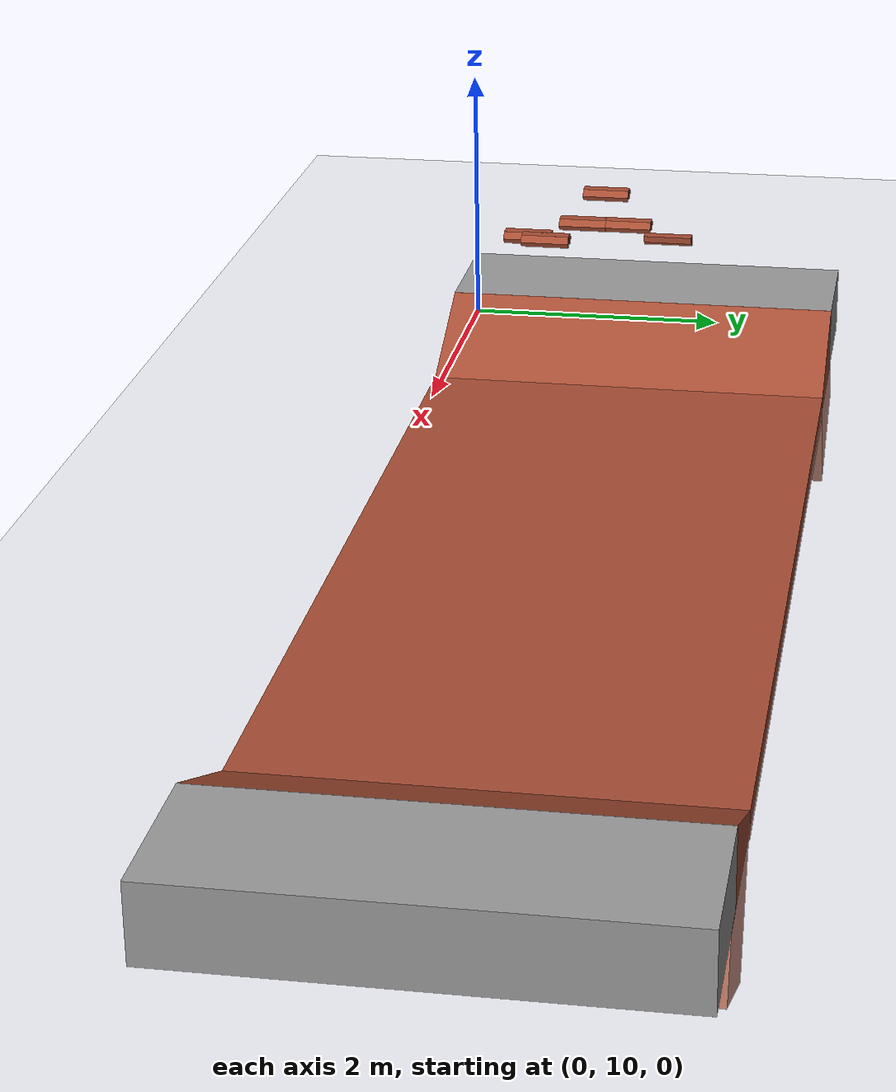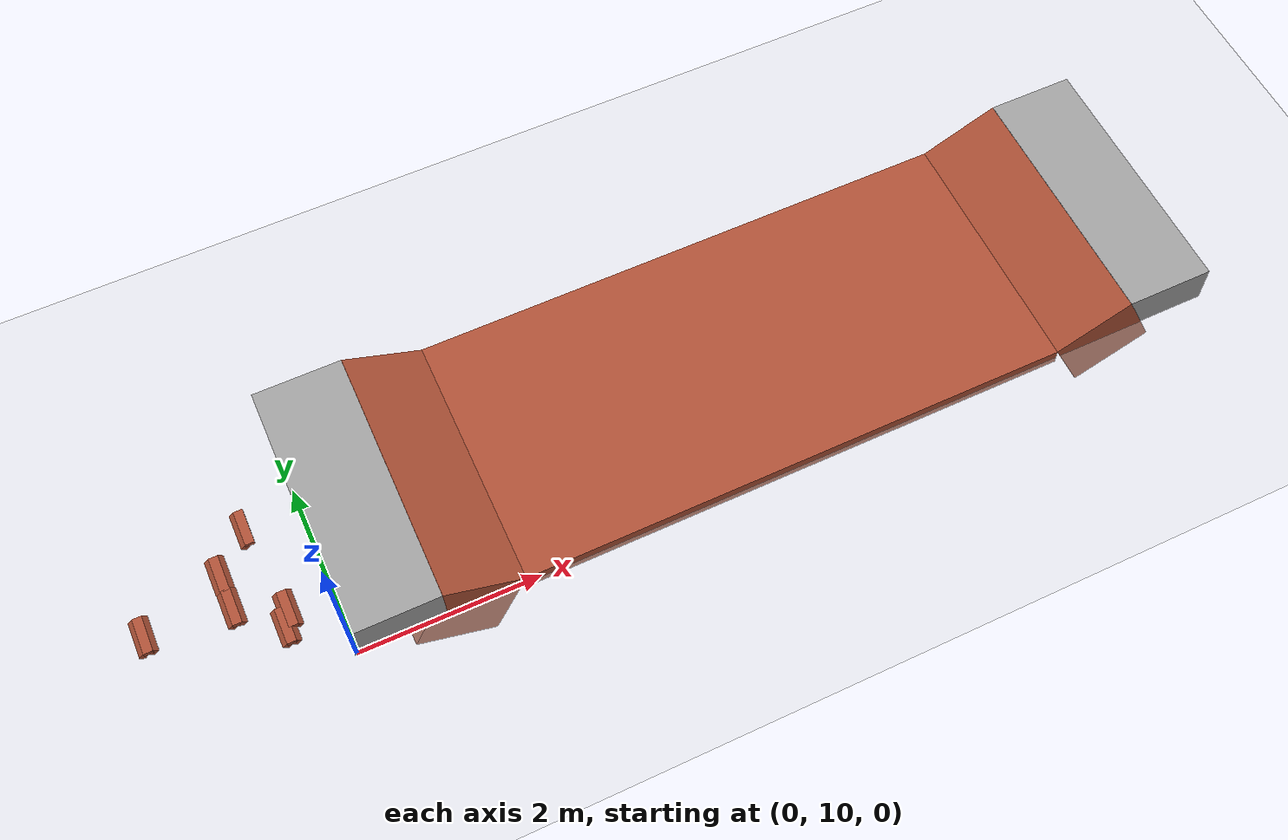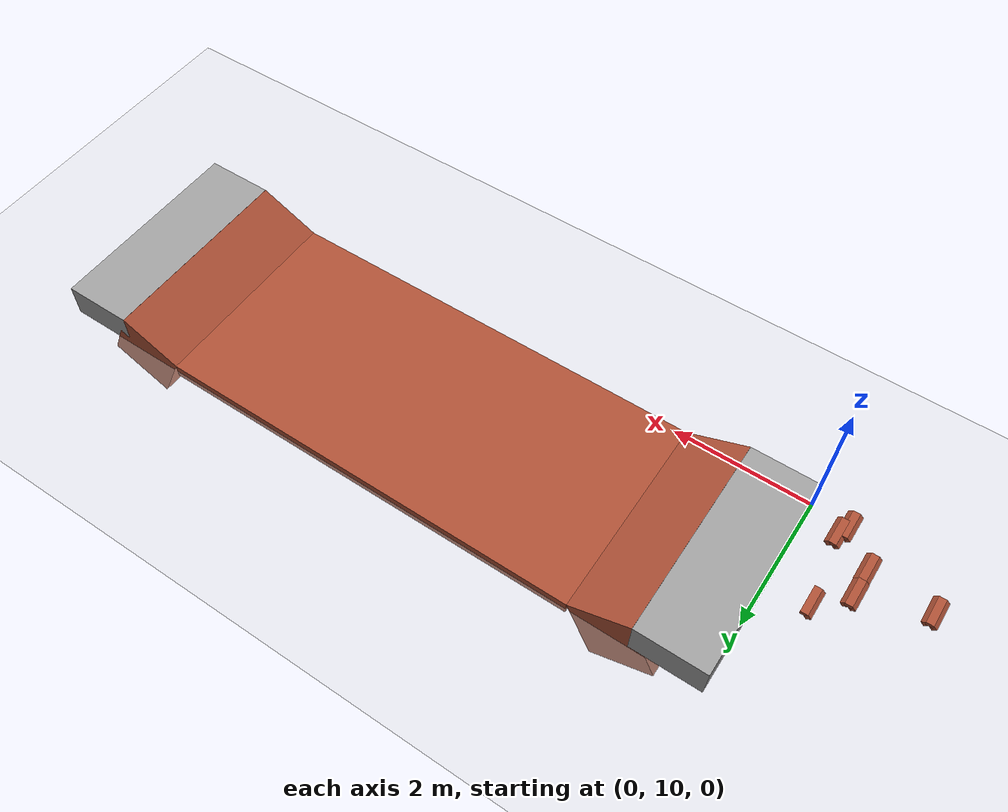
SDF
<sdf version="1.7">
 <world name="default">
  <model name="ground_plane">
   <static>1</static>
   <link name="link">
    <collision name="collision">
     <geometry><plane><normal>0 0 1</normal><size>100 100</size></plane></geometry>
     <surface><friction><ode><mu>100</mu><mu2>50</mu2></ode></friction></surface>
    </collision>
    <visual name="visual">
     <cast_shadows>0</cast_shadows>
     <geometry><plane><normal>0 0 1</normal><size>100 100</size></plane></geometry>
     <material>
      <script><uri>file://media/materials/scripts/gazebo.material</uri><name>Gazebo/Grey</name></script>
     </material>
    </visual>
   </link>
  </model>
  <model name="tumsek">
   <static>1</static>
   <pose>-5.17447 11.4027 0.5 0 -0 0</pose>
   <link name="tumsek_main_5">
    <pose>4.60433 0.123551 0 0 -0 0</pose>
    <collision name="tumsek_Collision">
     <geometry><box><size>0.1 0.4 0.05</size></box></geometry>
     <pose>0 0 0.025 0 -0 0</pose>
    </collision>
    <visual name="tumsek_Visual">
     <pose>0 0 0.025 0 -0 0</pose>
     <geometry><box><size>0.1 0.4 0.05</size></box></geometry>
     <material>
      <script><uri>file://media/materials/scripts/gazebo.material</uri><name>Gazebo/Bricks</name></script>
      <ambient>1 1 1 1</ambient>
     </material>
     <meta><layer>0</layer></meta>
    </visual>
   </link>
   <link name="tumsek_back_5">
    <pose>4.55433 0.123551 0 0 0.785 0</pose>
    <collision name="tumsek_Collision"><geometry><box><size>0.0707 0.4 0.0707</size></box></geometry></collision>
    <visual name="tumsek_Visual">
     <geometry><box><size>0.0707 0.4 0.0707</size></box></geometry>
     <material>
      <script><uri>file://media/materials/scripts/gazebo.material</uri><name>Gazebo/Bricks</name></script>
      <ambient>1 1 1 1</ambient>
     </material>
    </visual>
   </link>
   <link name="tumsek_main_15">
    <pose>4.22741 -0.649461 0 0 -0 0</pose>
    <collision name="tumsek_Collision">
     <geometry><box><size>0.1 0.4 0.05</size></box></geometry>
     <pose>0 0 0.025 0 -0 0</pose>
    </collision>
    <visual name="tumsek_Visual">
     <pose>0 0 0.025 0 -0 0</pose>
     <geometry><box><size>0.1 0.4 0.05</size></box></geometry>
     <material>
      <script><uri>file://media/materials/scripts/gazebo.material</uri><name>Gazebo/Bricks</name></script>
      <ambient>1 1 1 1</ambient>
     </material>
     <meta><layer>0</layer></meta>
    </visual>
   </link>
   <link name="tumsek_front_15">
    <pose>4.27741 -0.649461 0 0 0.785 0</pose>
    <collision name="tumsek_Collision"><geometry><box><size>0.0707 0.4 0.0707</size></box></geometry></collision>
    <visual name="tumsek_Visual">
     <geometry><box><size>0.0707 0.4 0.0707</size></box></geometry>
     <material>
      <script><uri>file://media/materials/scripts/gazebo.material</uri><name>Gazebo/Bricks</name></script>
      <ambient>1 1 1 1</ambient>
     </material>
    </visual>
   </link>
   <link name="tumsek_back_15">
    <pose>4.17741 -0.649461 0 0 0.785 0</pose>
    <collision name="tumsek_Collision"><geometry><box><size>0.0707 0.4 0.0707</size></box></geometry></collision>
    <visual name="tumsek_Visual">
     <geometry><box><size>0.0707 0.4 0.0707</size></box></geometry>
     <material>
      <script><uri>file://media/materials/scripts/gazebo.material</uri><name>Gazebo/Bricks</name></script>
      <ambient>1 1 1 1</ambient>
     </material>
    </visual>
   </link>
   <link name="tumsek_main_19">
    <pose>3.35353 -0.567816 0 0 -0 0</pose>
    <collision name="tumsek_Collision">
     <geometry><box><size>0.1 0.4 0.05</size></box></geometry>
     <pose>0 0 0.025 0 -0 0</pose>
    </collision>
    <visual name="tumsek_Visual">
     <pose>0 0 0.025 0 -0 0</pose>
     <geometry><box><size>0.1 0.4 0.05</size></box></geometry>
     <material>
      <script><uri>file://media/materials/scripts/gazebo.material</uri><name>Gazebo/Bricks</name></script>
      <ambient>1 1 1 1</ambient>
     </material>
     <meta><layer>0</layer></meta>
    </visual>
   </link>
   <link name="tumsek_front_19">
    <pose>3.40353 -0.567816 0 0 0.785 0</pose>
    <collision name="tumsek_Collision"><geometry><box><size>0.0707 0.4 0.0707</size></box></geometry></collision>
    <visual name="tumsek_Visual">
     <geometry><box><size>0.0707 0.4 0.0707</size></box></geometry>
     <material>
      <script><uri>file://media/materials/scripts/gazebo.material</uri><name>Gazebo/Bricks</name></script>
      <ambient>1 1 1 1</ambient>
     </material>
    </visual>
   </link>
   <link name="tumsek_back_19">
    <pose>3.30353 -0.567816 0 0 0.785 0</pose>
    <collision name="tumsek_Collision"><geometry><box><size>0.0707 0.4 0.0707</size></box></geometry></collision>
    <visual name="tumsek_Visual">
     <geometry><box><size>0.0707 0.4 0.0707</size></box></geometry>
     <material>
      <script><uri>file://media/materials/scripts/gazebo.material</uri><name>Gazebo/Bricks</name></script>
      <ambient>1 1 1 1</ambient>
     </material>
    </visual>
   </link>
   <link name="tumsek_main_41">
    <pose>4.71915 -0.899925 0 0 -0 0</pose>
    <collision name="tumsek_Collision">
     <geometry><box><size>0.1 0.4 0.05</size></box></geometry>
     <pose>0 0 0.025 0 -0 0</pose>
    </collision>
    <visual name="tumsek_Visual">
     <pose>0 0 0.025 0 -0 0</pose>
     <geometry><box><size>0.1 0.4 0.05</size></box></geometry>
     <material>
      <script><uri>file://media/materials/scripts/gazebo.material</uri><name>Gazebo/Bricks</name></script>
      <ambient>1 1 1 1</ambient>
     </material>
     <meta><layer>0</layer></meta>
    </visual>
   </link>
   <link name="tumsek_front_41">
    <pose>4.76915 -0.899925 0 0 0.785 0</pose>
    <collision name="tumsek_Collision"><geometry><box><size>0.0707 0.4 0.0707</size></box></geometry></collision>
    <visual name="tumsek_Visual">
     <geometry><box><size>0.0707 0.4 0.0707</size></box></geometry>
     <material>
      <script><uri>file://media/materials/scripts/gazebo.material</uri><name>Gazebo/Bricks</name></script>
      <ambient>1 1 1 1</ambient>
     </material>
    </visual>
   </link>
   <link name="tumsek_back_41">
    <pose>4.66915 -0.899925 0 0 0.785 0</pose>
    <collision name="tumsek_Collision"><geometry><box><size>0.0707 0.4 0.0707</size></box></geometry></collision>
    <visual name="tumsek_Visual">
     <geometry><box><size>0.0707 0.4 0.0707</size></box></geometry>
     <material>
      <script><uri>file://media/materials/scripts/gazebo.material</uri><name>Gazebo/Bricks</name></script>
      <ambient>1 1 1 1</ambient>
     </material>
    </visual>
   </link>
   <link name="tumsek_main_44">
    <pose>4.22276 -0.263765 0 0 -0 0</pose>
    <collision name="tumsek_Collision">
     <geometry><box><size>0.1 0.4 0.05</size></box></geometry>
     <pose>0 0 0.025 0 -0 0</pose>
    </collision>
    <visual name="tumsek_Visual">
     <pose>0 0 0.025 0 -0 0</pose>
     <geometry><box><size>0.1 0.4 0.05</size></box></geometry>
     <material>
      <script><uri>file://media/materials/scripts/gazebo.material</uri><name>Gazebo/Bricks</name></script>
      <ambient>1 1 1 1</ambient>
     </material>
     <meta><layer>0</layer></meta>
    </visual>
   </link>
   <link name="tumsek_front_44">
    <pose>4.27276 -0.263765 0 0 0.785 0</pose>
    <collision name="tumsek_Collision"><geometry><box><size>0.0707 0.4 0.0707</size></box></geometry></collision>
    <visual name="tumsek_Visual">
     <geometry><box><size>0.0707 0.4 0.0707</size></box></geometry>
     <material>
      <script><uri>file://media/materials/scripts/gazebo.material</uri><name>Gazebo/Bricks</name></script>
      <ambient>1 1 1 1</ambient>
     </material>
    </visual>
   </link>
   <link name="tumsek_back_44">
    <pose>4.17276 -0.263765 0 0 0.785 0</pose>
    <collision name="tumsek_Collision"><geometry><box><size>0.0707 0.4 0.0707</size></box></geometry></collision>
    <visual name="tumsek_Visual">
     <geometry><box><size>0.0707 0.4 0.0707</size></box></geometry>
     <material>
      <script><uri>file://media/materials/scripts/gazebo.material</uri><name>Gazebo/Bricks</name></script>
      <ambient>1 1 1 1</ambient>
     </material>
    </visual>
   </link>
   <link name="tumsek_main_55">
    <pose>4.64757 -1.05898 0 0 -0 0</pose>
    <collision name="tumsek_Collision">
     <geometry><box><size>0.1 0.4 0.05</size></box></geometry>
     <pose>0 0 0.025 0 -0 0</pose>
    </collision>
    <visual name="tumsek_Visual">
     <pose>0 0 0.025 0 -0 0</pose>
     <geometry><box><size>0.1 0.4 0.05</size></box></geometry>
     <material>
      <script><uri>file://media/materials/scripts/gazebo.material</uri><name>Gazebo/Bricks</name></script>
      <ambient>1 1 1 1</ambient>
     </material>
     <meta><layer>0</layer></meta>
    </visual>
   </link>
   <link name="tumsek_front_55">
    <pose>4.69757 -1.05898 0 0 0.785 0</pose>
    <collision name="tumsek_Collision"><geometry><box><size>0.0707 0.4 0.0707</size></box></geometry></collision>
    <visual name="tumsek_Visual">
     <geometry><box><size>0.0707 0.4 0.0707</size></box></geometry>
     <material>
      <script><uri>file://media/materials/scripts/gazebo.material</uri><name>Gazebo/Bricks</name></script>
      <ambient>1 1 1 1</ambient>
     </material>
    </visual>
   </link>
   <link name="tumsek_back_55">
    <pose>4.59757 -1.05898 0 0 0.785 0</pose>
    <collision name="tumsek_Collision"><geometry><box><size>0.0707 0.4 0.0707</size></box></geometry></collision>
    <visual name="tumsek_Visual">
     <geometry><box><size>0.0707 0.4 0.0707</size></box></geometry>
     <material>
      <script><uri>file://media/materials/scripts/gazebo.material</uri><name>Gazebo/Bricks</name></script>
      <ambient>1 1 1 1</ambient>
     </material>
    </visual>
   </link>
  </model>
  <model name="water">
   <pose>4.97378 11.4926 0 0 -0 0</pose>
   <static>1</static>
   <link name="water_main">
    <collision name="water_main_Collision"><geometry><box><size>6.284 3 0.2</size></box></geometry></collision>
    <visual name="water_main_Visual">
     <geometry><box><size>6.284 3 0.2</size></box></geometry>
     <material>
      <script><uri>file://media/materials/scripts/gazebo.material</uri><name>Gazebo/Bricks</name></script>
      <ambient>1 1 1 1</ambient>
     </material>
     <meta><layer>0</layer></meta>
    </visual>
   </link>
   <link name="water_out">
    <pose>-3.77 0 -0.129 0 -0 0</pose>
    <collision name="water_out_Collision">
     <geometry><box><size>0.946 3 0.946</size></box></geometry>
     <pose>0 0 0 0 0.4363 0</pose>
    </collision>
    <visual name="water_out_Visual">
     <pose>0 0 0 0 0.4363 0</pose>
     <geometry><box><size>0.946 3 0.946</size></box></geometry>
     <material>
      <script><uri>file://media/materials/scripts/gazebo.material</uri><name>Gazebo/Bricks</name></script>
      <ambient>1 1 1 1</ambient>
     </material>
    </visual>
   </link>
   <link name="water_in">
    <pose>3.77 0 -0.129 0 -0 0</pose>
    <collision name="water_in_Collision">
     <geometry><box><size>0.946 3 0.946</size></box></geometry>
     <pose>0 0 0 0 1.1344 0</pose>
    </collision>
    <visual name="water_in_Visual">
     <pose>0 0 0 0 1.1344 0</pose>
     <geometry><box><size>0.946 3 0.946</size></box></geometry>
     <material>
      <script><uri>file://media/materials/scripts/gazebo.material</uri><name>Gazebo/Bricks</name></script>
      <ambient>1 1 1 1</ambient>
     </material>
    </visual>
   </link>
   <link name="last_part">
    <pose>-4.5 0 0 0 -0 0</pose>
    <collision name="last_Collision">
     <geometry><box><size>1 3 0.5</size></box></geometry>
     <pose>0 0 0.25 0 -0 0</pose>
    </collision>
    <visual name="last_Visual">
     <pose>0 0 0.25 0 -0 0</pose>
     <geometry><box><size>1 3 0.5</size></box></geometry>
     <material>
      <script><uri>file://media/materials/scripts/gazebo.material</uri><name>Gazebo/Grey</name></script>
      <ambient>1 1 1 1</ambient>
     </material>
    </visual>
   </link>
   <link name="first_part">
    <pose>4.5 0 0 0 -0 0</pose>
    <collision name="first_part_Collision">
     <geometry><box><size>1 3 0.5</size></box></geometry>
     <pose>0 0 0.25 0 -0 0</pose>
    </collision>
    <visual name="first_part_Visual">
     <pose>0 0 0.25 0 -0 0</pose>
     <geometry><box><size>1 3 0.5</size></box></geometry>
     <material>
      <script><uri>file://media/materials/scripts/gazebo.material</uri><name>Gazebo/Grey</name></script>
      <ambient>1 1 1 1</ambient>
     </material>
    </visual>
   </link>
  </model>
 </world>
</sdf>
